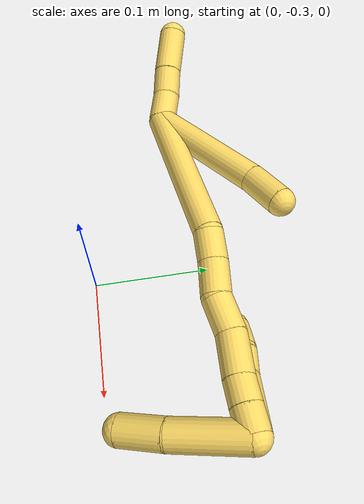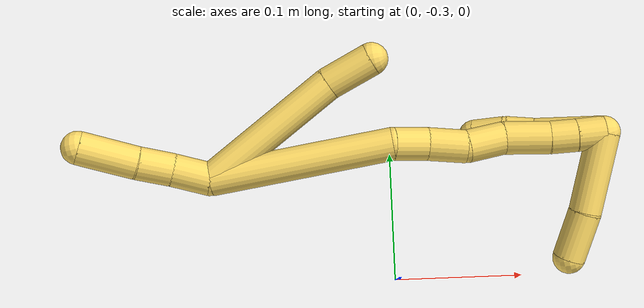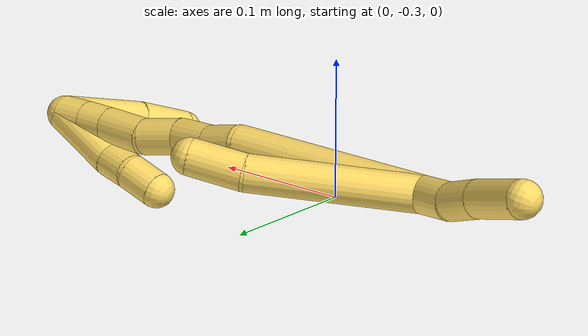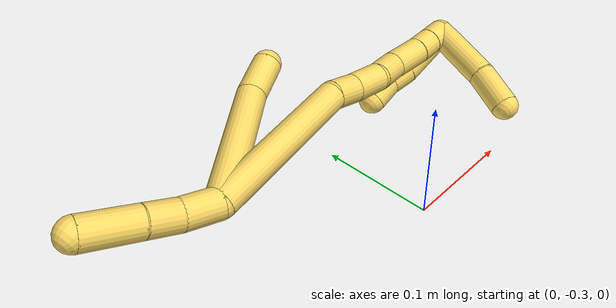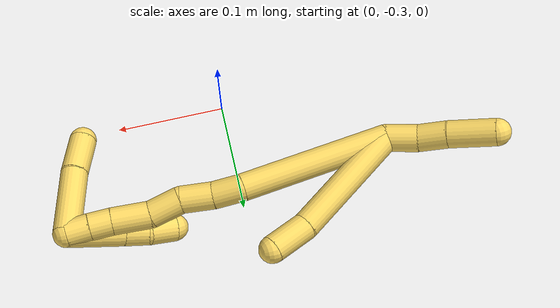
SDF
<sdf version="1.7">
 <world name="default">
  <model name="5">
   <static>0</static>
   <link name="5">
    <collision name="collision-cylinder-e_1_2_8">
     <pose>-0.02369 -0.012154 0.049847 0.23916 -0.432558 -0.052787</pose>
     <geometry><cylinder><radius>0.0125</radius><length>0.113025</length></cylinder></geometry>
     <surface>
      <friction><ode><mu>1.16</mu><mu2>1.16</mu2><slip1>0</slip1><slip2>0</slip2></ode></friction>
      <contact><ode><kp>1e+06</kp><kd>1</kd><max_vel>0</max_vel><min_depth>0.001</min_depth></ode></contact>
     </surface>
    </collision>
    <visual name="visual-cylinder-e_1_2_8">
     <pose>-0.02369 -0.012154 0.049847 0.23916 -0.432558 -0.052787</pose>
     <geometry><cylinder><radius>0.0125</radius><length>0.113025</length></cylinder></geometry>
     <material><ambient>1 0.858824 0.4 1</ambient></material>
    </visual>
    <collision name="collision-cylinder-e_2_8_6">
     <pose>-0.051577 -0.027356 0.117439 0.170094 -0.229035 -0.019611</pose>
     <geometry><cylinder><radius>0.0125</radius><length>0.036975</length></cylinder></geometry>
     <surface>
      <friction><ode><mu>1.16</mu><mu2>1.16</mu2><slip1>0</slip1><slip2>0</slip2></ode></friction>
      <contact><ode><kp>1e+06</kp><kd>1</kd><max_vel>0</max_vel><min_depth>0.001</min_depth></ode></contact>
     </surface>
    </collision>
    <visual name="visual-cylinder-e_2_8_6">
     <pose>-0.051577 -0.027356 0.117439 0.170094 -0.229035 -0.019611</pose>
     <geometry><cylinder><radius>0.0125</radius><length>0.036975</length></cylinder></geometry>
     <material><ambient>1 0.858824 0.4 1</ambient></material>
    </visual>
    <collision name="collision-cylinder-e_1_2_9">
     <pose>-0.001437 -0.007701 -0.012491 2.58913 -0.097647 -0.341382</pose>
     <geometry><cylinder><radius>0.0125</radius><length>0.029489</length></cylinder></geometry>
     <surface>
      <friction><ode><mu>1.16</mu><mu2>1.16</mu2><slip1>0</slip1><slip2>0</slip2></ode></friction>
      <contact><ode><kp>1e+06</kp><kd>1</kd><max_vel>0</max_vel><min_depth>0.001</min_depth></ode></contact>
     </surface>
    </collision>
    <visual name="visual-cylinder-e_1_2_9">
     <pose>-0.001437 -0.007701 -0.012491 2.58913 -0.097647 -0.341382</pose>
     <geometry><cylinder><radius>0.0125</radius><length>0.029489</length></cylinder></geometry>
     <material><ambient>1 0.858824 0.4 1</ambient></material>
    </visual>
    <collision name="collision-cylinder-e_2_9_10">
     <pose>-0.001617 -0.023778 -0.035485 2.46835 0.093343 0.265368</pose>
     <geometry><cylinder><radius>0.0125</radius><length>0.026985</length></cylinder></geometry>
     <surface>
      <friction><ode><mu>1.16</mu><mu2>1.16</mu2><slip1>0</slip1><slip2>0</slip2></ode></friction>
      <contact><ode><kp>1e+06</kp><kd>1</kd><max_vel>0</max_vel><min_depth>0.001</min_depth></ode></contact>
     </surface>
    </collision>
    <visual name="visual-cylinder-e_2_9_10">
     <pose>-0.001617 -0.023778 -0.035485 2.46835 0.093343 0.265368</pose>
     <geometry><cylinder><radius>0.0125</radius><length>0.026985</length></cylinder></geometry>
     <material><ambient>1 0.858824 0.4 1</ambient></material>
    </visual>
    <collision name="collision-cylinder-e_3_10_5">
     <pose>-0.000237 -0.045675 -0.06304 2.47117 0.005627 0.016153</pose>
     <geometry><cylinder><radius>0.0125</radius><length>0.043526</length></cylinder></geometry>
     <surface>
      <friction><ode><mu>1.16</mu><mu2>1.16</mu2><slip1>0</slip1><slip2>0</slip2></ode></friction>
      <contact><ode><kp>1e+06</kp><kd>1</kd><max_vel>0</max_vel><min_depth>0.001</min_depth></ode></contact>
     </surface>
    </collision>
    <visual name="visual-cylinder-e_3_10_5">
     <pose>-0.000237 -0.045675 -0.06304 2.47117 0.005627 0.016153</pose>
     <geometry><cylinder><radius>0.0125</radius><length>0.043526</length></cylinder></geometry>
     <material><ambient>1 0.858824 0.4 1</ambient></material>
    </visual>
    <collision name="collision-cylinder-e_1_2_11">
     <pose>-0.006789 0.009376 0.068195 -0.136625 -0.098308 0.006731</pose>
     <geometry><cylinder><radius>0.0125</radius><length>0.138342</length></cylinder></geometry>
     <surface>
      <friction><ode><mu>1.16</mu><mu2>1.16</mu2><slip1>0</slip1><slip2>0</slip2></ode></friction>
      <contact><ode><kp>1e+06</kp><kd>1</kd><max_vel>0</max_vel><min_depth>0.001</min_depth></ode></contact>
     </surface>
    </collision>
    <visual name="visual-cylinder-e_1_2_11">
     <pose>-0.006789 0.009376 0.068195 -0.136625 -0.098308 0.006731</pose>
     <geometry><cylinder><radius>0.0125</radius><length>0.138342</length></cylinder></geometry>
     <material><ambient>1 0.858824 0.4 1</ambient></material>
    </visual>
    <collision name="collision-cylinder-e_2_11_12">
     <pose>-0.015713 0.024599 0.147955 -0.4682 -0.163304 0.039025</pose>
     <geometry><cylinder><radius>0.0125</radius><length>0.026267</length></cylinder></geometry>
     <surface>
      <friction><ode><mu>1.16</mu><mu2>1.16</mu2><slip1>0</slip1><slip2>0</slip2></ode></friction>
      <contact><ode><kp>1e+06</kp><kd>1</kd><max_vel>0</max_vel><min_depth>0.001</min_depth></ode></contact>
     </surface>
    </collision>
    <visual name="visual-cylinder-e_2_11_12">
     <pose>-0.015713 0.024599 0.147955 -0.4682 -0.163304 0.039025</pose>
     <geometry><cylinder><radius>0.0125</radius><length>0.026267</length></cylinder></geometry>
     <material><ambient>1 0.858824 0.4 1</ambient></material>
    </visual>
    <collision name="collision-cylinder-e_3_12_13">
     <pose>-0.017782 0.03617 0.173295 -0.393743 0.004458 -0.000889</pose>
     <geometry><cylinder><radius>0.0125</radius><length>0.029837</length></cylinder></geometry>
     <surface>
      <friction><ode><mu>1.16</mu><mu2>1.16</mu2><slip1>0</slip1><slip2>0</slip2></ode></friction>
      <contact><ode><kp>1e+06</kp><kd>1</kd><max_vel>0</max_vel><min_depth>0.001</min_depth></ode></contact>
     </surface>
    </collision>
    <visual name="visual-cylinder-e_3_12_13">
     <pose>-0.017782 0.03617 0.173295 -0.393743 0.004458 -0.000889</pose>
     <geometry><cylinder><radius>0.0125</radius><length>0.029837</length></cylinder></geometry>
     <material><ambient>1 0.858824 0.4 1</ambient></material>
    </visual>
    <collision name="collision-cylinder-e_4_13_14">
     <pose>-0.022011 0.045802 0.200695 -0.279392 -0.294271 0.041673</pose>
     <geometry><cylinder><radius>0.0125</radius><length>0.029619</length></cylinder></geometry>
     <surface>
      <friction><ode><mu>1.16</mu><mu2>1.16</mu2><slip1>0</slip1><slip2>0</slip2></ode></friction>
      <contact><ode><kp>1e+06</kp><kd>1</kd><max_vel>0</max_vel><min_depth>0.001</min_depth></ode></contact>
     </surface>
    </collision>
    <visual name="visual-cylinder-e_4_13_14">
     <pose>-0.022011 0.045802 0.200695 -0.279392 -0.294271 0.041673</pose>
     <geometry><cylinder><radius>0.0125</radius><length>0.029619</length></cylinder></geometry>
     <material><ambient>1 0.858824 0.4 1</ambient></material>
    </visual>
    <collision name="collision-cylinder-e_5_14_15">
     <pose>-0.026217 0.054785 0.230989 -0.295488 0.005148 -0.000766</pose>
     <geometry><cylinder><radius>0.0125</radius><length>0.034851</length></cylinder></geometry>
     <surface>
      <friction><ode><mu>1.16</mu><mu2>1.16</mu2><slip1>0</slip1><slip2>0</slip2></ode></friction>
      <contact><ode><kp>1e+06</kp><kd>1</kd><max_vel>0</max_vel><min_depth>0.001</min_depth></ode></contact>
     </surface>
    </collision>
    <visual name="visual-cylinder-e_5_14_15">
     <pose>-0.026217 0.054785 0.230989 -0.295488 0.005148 -0.000766</pose>
     <geometry><cylinder><radius>0.0125</radius><length>0.034851</length></cylinder></geometry>
     <material><ambient>1 0.858824 0.4 1</ambient></material>
    </visual>
    <collision name="collision-cylinder-e_6_15_16">
     <pose>-0.026574 0.062182 0.257444 -0.233035 -0.044468 0.005206</pose>
     <geometry><cylinder><radius>0.0125</radius><length>0.020134</length></cylinder></geometry>
     <surface>
      <friction><ode><mu>1.16</mu><mu2>1.16</mu2><slip1>0</slip1><slip2>0</slip2></ode></friction>
      <contact><ode><kp>1e+06</kp><kd>1</kd><max_vel>0</max_vel><min_depth>0.001</min_depth></ode></contact>
     </surface>
    </collision>
    <visual name="visual-cylinder-e_6_15_16">
     <pose>-0.026574 0.062182 0.257444 -0.233035 -0.044468 0.005206</pose>
     <geometry><cylinder><radius>0.0125</radius><length>0.020134</length></cylinder></geometry>
     <material><ambient>1 0.858824 0.4 1</ambient></material>
    </visual>
    <collision name="collision-cylinder-e_7_16_1">
     <pose>-0.027888 0.066878 0.277395 -0.229352 -0.08275 0.009537</pose>
     <geometry><cylinder><radius>0.0125</radius><length>0.020951</length></cylinder></geometry>
     <surface>
      <friction><ode><mu>1.16</mu><mu2>1.16</mu2><slip1>0</slip1><slip2>0</slip2></ode></friction>
      <contact><ode><kp>1e+06</kp><kd>1</kd><max_vel>0</max_vel><min_depth>0.001</min_depth></ode></contact>
     </surface>
    </collision>
    <visual name="visual-cylinder-e_7_16_1">
     <pose>-0.027888 0.066878 0.277395 -0.229352 -0.08275 0.009537</pose>
     <geometry><cylinder><radius>0.0125</radius><length>0.020951</length></cylinder></geometry>
     <material><ambient>1 0.858824 0.4 1</ambient></material>
    </visual>
    <collision name="collision-cylinder-e_1_1_17">
     <pose>-0.010518 0.090648 0.274169 -2.13006 0.625609 -1.05713</pose>
     <geometry><cylinder><radius>0.0125</radius><length>0.06228</length></cylinder></geometry>
     <surface>
      <friction><ode><mu>1.16</mu><mu2>1.16</mu2><slip1>0</slip1><slip2>0</slip2></ode></friction>
      <contact><ode><kp>1e+06</kp><kd>1</kd><max_vel>0</max_vel><min_depth>0.001</min_depth></ode></contact>
     </surface>
    </collision>
    <visual name="visual-cylinder-e_1_1_17">
     <pose>-0.010518 0.090648 0.274169 -2.13006 0.625609 -1.05713</pose>
     <geometry><cylinder><radius>0.0125</radius><length>0.06228</length></cylinder></geometry>
     <material><ambient>1 0.858824 0.4 1</ambient></material>
    </visual>
    <collision name="collision-cylinder-e_2_17_4">
     <pose>0.01689 0.125333 0.251031 -2.20357 0.507919 -0.946782</pose>
     <geometry><cylinder><radius>0.0125</radius><length>0.03772</length></cylinder></geometry>
     <surface>
      <friction><ode><mu>1.16</mu><mu2>1.16</mu2><slip1>0</slip1><slip2>0</slip2></ode></friction>
      <contact><ode><kp>1e+06</kp><kd>1</kd><max_vel>0</max_vel><min_depth>0.001</min_depth></ode></contact>
     </surface>
    </collision>
    <visual name="visual-cylinder-e_2_17_4">
     <pose>0.01689 0.125333 0.251031 -2.20357 0.507919 -0.946782</pose>
     <geometry><cylinder><radius>0.0125</radius><length>0.03772</length></cylinder></geometry>
     <material><ambient>1 0.858824 0.4 1</ambient></material>
    </visual>
    <collision name="collision-cylinder-e_1_1_18">
     <pose>-0.036514 0.069542 0.2622 -3.13013 -0.296922 3.06499</pose>
     <geometry><cylinder><radius>0.0125</radius><length>0.053047</length></cylinder></geometry>
     <surface>
      <friction><ode><mu>1.16</mu><mu2>1.16</mu2><slip1>0</slip1><slip2>0</slip2></ode></friction>
      <contact><ode><kp>1e+06</kp><kd>1</kd><max_vel>0</max_vel><min_depth>0.001</min_depth></ode></contact>
     </surface>
    </collision>
    <visual name="visual-cylinder-e_1_1_18">
     <pose>-0.036514 0.069542 0.2622 -3.13013 -0.296922 3.06499</pose>
     <geometry><cylinder><radius>0.0125</radius><length>0.053047</length></cylinder></geometry>
     <material><ambient>1 0.858824 0.4 1</ambient></material>
    </visual>
    <collision name="collision-cylinder-e_2_18_19">
     <pose>-0.046242 0.067126 0.226006 2.89673 -0.174458 -1.23576</pose>
     <geometry><cylinder><radius>0.0125</radius><length>0.022677</length></cylinder></geometry>
     <surface>
      <friction><ode><mu>1.16</mu><mu2>1.16</mu2><slip1>0</slip1><slip2>0</slip2></ode></friction>
      <contact><ode><kp>1e+06</kp><kd>1</kd><max_vel>0</max_vel><min_depth>0.001</min_depth></ode></contact>
     </surface>
    </collision>
    <visual name="visual-cylinder-e_2_18_19">
     <pose>-0.046242 0.067126 0.226006 2.89673 -0.174458 -1.23576</pose>
     <geometry><cylinder><radius>0.0125</radius><length>0.022677</length></cylinder></geometry>
     <material><ambient>1 0.858824 0.4 1</ambient></material>
    </visual>
    <collision name="collision-cylinder-e_3_19_3">
     <pose>-0.050131 0.064327 0.203188 3.13393 -0.158906 -3.04536</pose>
     <geometry><cylinder><radius>0.0125</radius><length>0.024276</length></cylinder></geometry>
     <surface>
      <friction><ode><mu>1.16</mu><mu2>1.16</mu2><slip1>0</slip1><slip2>0</slip2></ode></friction>
      <contact><ode><kp>1e+06</kp><kd>1</kd><max_vel>0</max_vel><min_depth>0.001</min_depth></ode></contact>
     </surface>
    </collision>
    <visual name="visual-cylinder-e_3_19_3">
     <pose>-0.050131 0.064327 0.203188 3.13393 -0.158906 -3.04536</pose>
     <geometry><cylinder><radius>0.0125</radius><length>0.024276</length></cylinder></geometry>
     <material><ambient>1 0.858824 0.4 1</ambient></material>
    </visual>
    <collision name="collision-sphere-3">
     <pose>-0.052052 0.064235 0.191203 0 -0 0</pose>
     <geometry><sphere><radius>0.0125</radius></sphere></geometry>
     <surface>
      <friction><ode><mu>1.16</mu><mu2>1.16</mu2><slip1>0</slip1><slip2>0</slip2></ode></friction>
      <contact><ode><kp>1e+06</kp><kd>1</kd><max_vel>0</max_vel><min_depth>0.001</min_depth></ode></contact>
     </surface>
    </collision>
    <visual name="visual-sphere-3">
     <pose>-0.052052 0.064235 0.191203 0 -0 0</pose>
     <geometry><sphere><radius>0.0125</radius></sphere></geometry>
     <material><ambient>1 0.858824 0.4 1</ambient></material>
    </visual>
    <collision name="collision-sphere-19">
     <pose>-0.04821 0.064419 0.215173 0 -0 0</pose>
     <geometry><sphere><radius>0.0125</radius></sphere></geometry>
     <surface>
      <friction><ode><mu>1.16</mu><mu2>1.16</mu2><slip1>0</slip1><slip2>0</slip2></ode></friction>
      <contact><ode><kp>1e+06</kp><kd>1</kd><max_vel>0</max_vel><min_depth>0.001</min_depth></ode></contact>
     </surface>
    </collision>
    <visual name="visual-sphere-19">
     <pose>-0.04821 0.064419 0.215173 0 -0 0</pose>
     <geometry><sphere><radius>0.0125</radius></sphere></geometry>
     <material><ambient>1 0.858824 0.4 1</ambient></material>
    </visual>
    <collision name="collision-sphere-5">
     <pose>-0.000115 -0.059197 -0.080092 0 -0 0</pose>
     <geometry><sphere><radius>0.0125</radius></sphere></geometry>
     <surface>
      <friction><ode><mu>1.16</mu><mu2>1.16</mu2><slip1>0</slip1><slip2>0</slip2></ode></friction>
      <contact><ode><kp>1e+06</kp><kd>1</kd><max_vel>0</max_vel><min_depth>0.001</min_depth></ode></contact>
     </surface>
    </collision>
    <visual name="visual-sphere-5">
     <pose>-0.000115 -0.059197 -0.080092 0 -0 0</pose>
     <geometry><sphere><radius>0.0125</radius></sphere></geometry>
     <material><ambient>1 0.858824 0.4 1</ambient></material>
    </visual>
    <collision name="collision-sphere-10">
     <pose>-0.00036 -0.032154 -0.045987 0 -0 0</pose>
     <geometry><sphere><radius>0.0125</radius></sphere></geometry>
     <surface>
      <friction><ode><mu>1.16</mu><mu2>1.16</mu2><slip1>0</slip1><slip2>0</slip2></ode></friction>
      <contact><ode><kp>1e+06</kp><kd>1</kd><max_vel>0</max_vel><min_depth>0.001</min_depth></ode></contact>
     </surface>
    </collision>
    <visual name="visual-sphere-10">
     <pose>-0.00036 -0.032154 -0.045987 0 -0 0</pose>
     <geometry><sphere><radius>0.0125</radius></sphere></geometry>
     <material><ambient>1 0.858824 0.4 1</ambient></material>
    </visual>
    <collision name="collision-sphere-6">
     <pose>-0.055774 -0.030404 0.135184 0 -0 0</pose>
     <geometry><sphere><radius>0.0125</radius></sphere></geometry>
     <surface>
      <friction><ode><mu>1.16</mu><mu2>1.16</mu2><slip1>0</slip1><slip2>0</slip2></ode></friction>
      <contact><ode><kp>1e+06</kp><kd>1</kd><max_vel>0</max_vel><min_depth>0.001</min_depth></ode></contact>
     </surface>
    </collision>
    <visual name="visual-sphere-6">
     <pose>-0.055774 -0.030404 0.135184 0 -0 0</pose>
     <geometry><sphere><radius>0.0125</radius></sphere></geometry>
     <material><ambient>1 0.858824 0.4 1</ambient></material>
    </visual>
    <collision name="collision-sphere-9">
     <pose>-0.002875 -0.015401 -0.024982 0 -0 0</pose>
     <geometry><sphere><radius>0.0125</radius></sphere></geometry>
     <surface>
      <friction><ode><mu>1.16</mu><mu2>1.16</mu2><slip1>0</slip1><slip2>0</slip2></ode></friction>
      <contact><ode><kp>1e+06</kp><kd>1</kd><max_vel>0</max_vel><min_depth>0.001</min_depth></ode></contact>
     </surface>
    </collision>
    <visual name="visual-sphere-9">
     <pose>-0.002875 -0.015401 -0.024982 0 -0 0</pose>
     <geometry><sphere><radius>0.0125</radius></sphere></geometry>
     <material><ambient>1 0.858824 0.4 1</ambient></material>
    </visual>
    <collision name="collision-sphere-2">
     <geometry><sphere><radius>0.0125</radius></sphere></geometry>
     <surface>
      <friction><ode><mu>1.16</mu><mu2>1.16</mu2><slip1>0</slip1><slip2>0</slip2></ode></friction>
      <contact><ode><kp>1e+06</kp><kd>1</kd><max_vel>0</max_vel><min_depth>0.001</min_depth></ode></contact>
     </surface>
    </collision>
    <visual name="visual-sphere-2">
     <geometry><sphere><radius>0.0125</radius></sphere></geometry>
     <material><ambient>1 0.858824 0.4 1</ambient></material>
    </visual>
    <collision name="collision-sphere-8">
     <pose>-0.047379 -0.024308 0.099694 0 -0 0</pose>
     <geometry><sphere><radius>0.0125</radius></sphere></geometry>
     <surface>
      <friction><ode><mu>1.16</mu><mu2>1.16</mu2><slip1>0</slip1><slip2>0</slip2></ode></friction>
      <contact><ode><kp>1e+06</kp><kd>1</kd><max_vel>0</max_vel><min_depth>0.001</min_depth></ode></contact>
     </surface>
    </collision>
    <visual name="visual-sphere-8">
     <pose>-0.047379 -0.024308 0.099694 0 -0 0</pose>
     <geometry><sphere><radius>0.0125</radius></sphere></geometry>
     <material><ambient>1 0.858824 0.4 1</ambient></material>
    </visual>
    <collision name="collision-sphere-11">
     <pose>-0.013578 0.018751 0.136391 0 -0 0</pose>
     <geometry><sphere><radius>0.0125</radius></sphere></geometry>
     <surface>
      <friction><ode><mu>1.16</mu><mu2>1.16</mu2><slip1>0</slip1><slip2>0</slip2></ode></friction>
      <contact><ode><kp>1e+06</kp><kd>1</kd><max_vel>0</max_vel><min_depth>0.001</min_depth></ode></contact>
     </surface>
    </collision>
    <visual name="visual-sphere-11">
     <pose>-0.013578 0.018751 0.136391 0 -0 0</pose>
     <geometry><sphere><radius>0.0125</radius></sphere></geometry>
     <material><ambient>1 0.858824 0.4 1</ambient></material>
    </visual>
    <collision name="collision-sphere-12">
     <pose>-0.017849 0.030447 0.159519 0 -0 0</pose>
     <geometry><sphere><radius>0.0125</radius></sphere></geometry>
     <surface>
      <friction><ode><mu>1.16</mu><mu2>1.16</mu2><slip1>0</slip1><slip2>0</slip2></ode></friction>
      <contact><ode><kp>1e+06</kp><kd>1</kd><max_vel>0</max_vel><min_depth>0.001</min_depth></ode></contact>
     </surface>
    </collision>
    <visual name="visual-sphere-12">
     <pose>-0.017849 0.030447 0.159519 0 -0 0</pose>
     <geometry><sphere><radius>0.0125</radius></sphere></geometry>
     <material><ambient>1 0.858824 0.4 1</ambient></material>
    </visual>
    <collision name="collision-sphere-13">
     <pose>-0.017716 0.041894 0.187072 0 -0 0</pose>
     <geometry><sphere><radius>0.0125</radius></sphere></geometry>
     <surface>
      <friction><ode><mu>1.16</mu><mu2>1.16</mu2><slip1>0</slip1><slip2>0</slip2></ode></friction>
      <contact><ode><kp>1e+06</kp><kd>1</kd><max_vel>0</max_vel><min_depth>0.001</min_depth></ode></contact>
     </surface>
    </collision>
    <visual name="visual-sphere-13">
     <pose>-0.017716 0.041894 0.187072 0 -0 0</pose>
     <geometry><sphere><radius>0.0125</radius></sphere></geometry>
     <material><ambient>1 0.858824 0.4 1</ambient></material>
    </visual>
    <collision name="collision-sphere-14">
     <pose>-0.026306 0.049711 0.214319 0 -0 0</pose>
     <geometry><sphere><radius>0.0125</radius></sphere></geometry>
     <surface>
      <friction><ode><mu>1.16</mu><mu2>1.16</mu2><slip1>0</slip1><slip2>0</slip2></ode></friction>
      <contact><ode><kp>1e+06</kp><kd>1</kd><max_vel>0</max_vel><min_depth>0.001</min_depth></ode></contact>
     </surface>
    </collision>
    <visual name="visual-sphere-14">
     <pose>-0.026306 0.049711 0.214319 0 -0 0</pose>
     <geometry><sphere><radius>0.0125</radius></sphere></geometry>
     <material><ambient>1 0.858824 0.4 1</ambient></material>
    </visual>
    <collision name="collision-sphere-15">
     <pose>-0.026127 0.059859 0.247659 0 -0 0</pose>
     <geometry><sphere><radius>0.0125</radius></sphere></geometry>
     <surface>
      <friction><ode><mu>1.16</mu><mu2>1.16</mu2><slip1>0</slip1><slip2>0</slip2></ode></friction>
      <contact><ode><kp>1e+06</kp><kd>1</kd><max_vel>0</max_vel><min_depth>0.001</min_depth></ode></contact>
     </surface>
    </collision>
    <visual name="visual-sphere-15">
     <pose>-0.026127 0.059859 0.247659 0 -0 0</pose>
     <geometry><sphere><radius>0.0125</radius></sphere></geometry>
     <material><ambient>1 0.858824 0.4 1</ambient></material>
    </visual>
    <collision name="collision-sphere-16">
     <pose>-0.027022 0.064504 0.267229 0 -0 0</pose>
     <geometry><sphere><radius>0.0125</radius></sphere></geometry>
     <surface>
      <friction><ode><mu>1.16</mu><mu2>1.16</mu2><slip1>0</slip1><slip2>0</slip2></ode></friction>
      <contact><ode><kp>1e+06</kp><kd>1</kd><max_vel>0</max_vel><min_depth>0.001</min_depth></ode></contact>
     </surface>
    </collision>
    <visual name="visual-sphere-16">
     <pose>-0.027022 0.064504 0.267229 0 -0 0</pose>
     <geometry><sphere><radius>0.0125</radius></sphere></geometry>
     <material><ambient>1 0.858824 0.4 1</ambient></material>
    </visual>
    <collision name="collision-sphere-1">
     <pose>-0.028754 0.069251 0.287562 0 -0 0</pose>
     <geometry><sphere><radius>0.0125</radius></sphere></geometry>
     <surface>
      <friction><ode><mu>1.16</mu><mu2>1.16</mu2><slip1>0</slip1><slip2>0</slip2></ode></friction>
      <contact><ode><kp>1e+06</kp><kd>1</kd><max_vel>0</max_vel><min_depth>0.001</min_depth></ode></contact>
     </surface>
    </collision>
    <visual name="visual-sphere-1">
     <pose>-0.028754 0.069251 0.287562 0 -0 0</pose>
     <geometry><sphere><radius>0.0125</radius></sphere></geometry>
     <material><ambient>1 0.858824 0.4 1</ambient></material>
    </visual>
    <collision name="collision-sphere-18">
     <pose>-0.044274 0.069833 0.236839 0 -0 0</pose>
     <geometry><sphere><radius>0.0125</radius></sphere></geometry>
     <surface>
      <friction><ode><mu>1.16</mu><mu2>1.16</mu2><slip1>0</slip1><slip2>0</slip2></ode></friction>
      <contact><ode><kp>1e+06</kp><kd>1</kd><max_vel>0</max_vel><min_depth>0.001</min_depth></ode></contact>
     </surface>
    </collision>
    <visual name="visual-sphere-18">
     <pose>-0.044274 0.069833 0.236839 0 -0 0</pose>
     <geometry><sphere><radius>0.0125</radius></sphere></geometry>
     <material><ambient>1 0.858824 0.4 1</ambient></material>
    </visual>
    <collision name="collision-sphere-17">
     <pose>0.007717 0.112045 0.260777 0 -0 0</pose>
     <geometry><sphere><radius>0.0125</radius></sphere></geometry>
     <surface>
      <friction><ode><mu>1.16</mu><mu2>1.16</mu2><slip1>0</slip1><slip2>0</slip2></ode></friction>
      <contact><ode><kp>1e+06</kp><kd>1</kd><max_vel>0</max_vel><min_depth>0.001</min_depth></ode></contact>
     </surface>
    </collision>
    <visual name="visual-sphere-17">
     <pose>0.007717 0.112045 0.260777 0 -0 0</pose>
     <geometry><sphere><radius>0.0125</radius></sphere></geometry>
     <material><ambient>1 0.858824 0.4 1</ambient></material>
    </visual>
    <collision name="collision-sphere-4">
     <pose>0.026063 0.138622 0.241286 0 -0 0</pose>
     <geometry><sphere><radius>0.0125</radius></sphere></geometry>
     <surface>
      <friction><ode><mu>1.16</mu><mu2>1.16</mu2><slip1>0</slip1><slip2>0</slip2></ode></friction>
      <contact><ode><kp>1e+06</kp><kd>1</kd><max_vel>0</max_vel><min_depth>0.001</min_depth></ode></contact>
     </surface>
    </collision>
    <visual name="visual-sphere-4">
     <pose>0.026063 0.138622 0.241286 0 -0 0</pose>
     <geometry><sphere><radius>0.0125</radius></sphere></geometry>
     <material><ambient>1 0.858824 0.4 1</ambient></material>
    </visual>
    <inertial>
     <pose>-0.017959 0.027794 0.133198 0 -0 0</pose>
     <mass>0.75</mass>
     <inertia>
      <ixx>0.000342</ixx>
      <ixy>0</ixy>
      <ixz>0</ixz>
      <iyy>0.000354</iyy>
      <iyz>0</iyz>
      <izz>6.3e-05</izz>
     </inertia>
    </inertial>
   </link>
   <pose>-0.136536 -0.220595 0.054618 -1.26195 -0.682897 -1.60962</pose>
  </model>
 </world>
</sdf>
